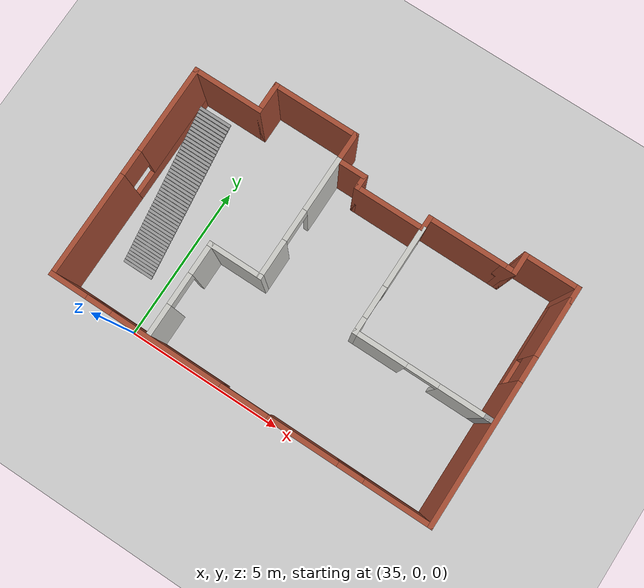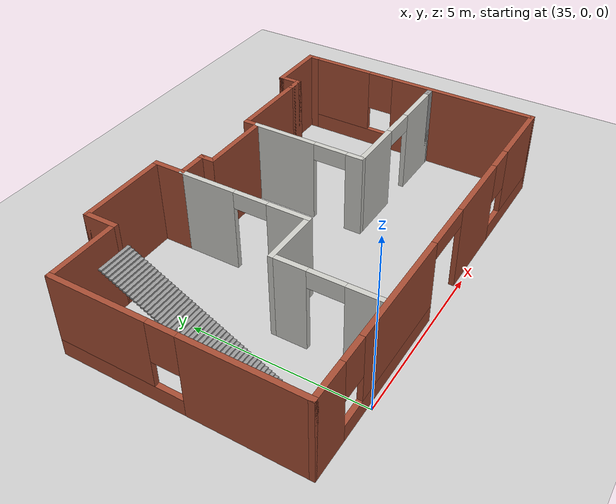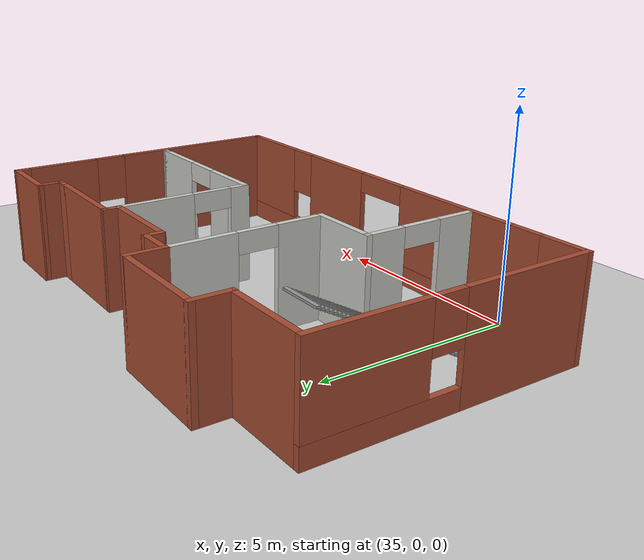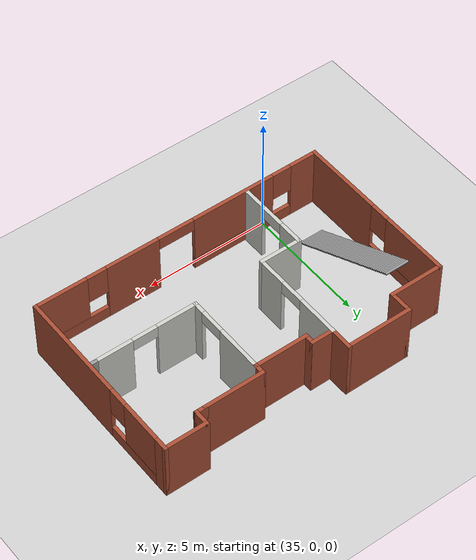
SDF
<sdf version="1.6">
 <world name="default">
  <model name="ground_plane">
   <static>1</static>
   <link name="link">
    <collision name="collision">
     <geometry><plane><normal>0 0 1</normal><size>100 100</size></plane></geometry>
     <surface><friction><ode><mu>100</mu><mu2>50</mu2></ode></friction></surface>
    </collision>
    <visual name="visual">
     <cast_shadows>0</cast_shadows>
     <geometry><plane><normal>0 0 1</normal><size>100 100</size></plane></geometry>
     <material>
      <script><uri>file://media/materials/scripts/gazebo.material</uri><name>Gazebo/Grey</name></script>
     </material>
    </visual>
   </link>
  </model>
  <model name="Multi_12_7home3">
   <pose>38.8003 4.03338 0 0 -0 0</pose>
   <link name="Stairs_5">
    <visual name="Stairs_5_Visual_0">
     <pose>-4.79994 -2.39706 0.025 0 0 -3.14159</pose>
     <geometry><box><size>1 0.093 0.05</size></box></geometry>
     <material>
      <script><uri>file://media/materials/scripts/gazebo.material</uri><name>Gazebo/Grey</name></script>
      <ambient>1 1 1 1</ambient>
     </material>
     <meta><layer>0</layer></meta>
    </visual>
    <collision name="Stairs_5_Collision_0">
     <geometry><box><size>1 0.093 0.05</size></box></geometry>
     <pose>-4.79994 -2.39706 0.025 0 0 -3.14159</pose>
    </collision>
    <visual name="Stairs_5_Visual_1">
     <pose>-4.79994 -2.30406 0.075 0 0 -3.14159</pose>
     <geometry><box><size>1 0.093 0.05</size></box></geometry>
     <material>
      <script><uri>file://media/materials/scripts/gazebo.material</uri><name>Gazebo/Grey</name></script>
      <ambient>1 1 1 1</ambient>
     </material>
     <meta><layer>0</layer></meta>
    </visual>
    <collision name="Stairs_5_Collision_1">
     <geometry><box><size>1 0.093 0.05</size></box></geometry>
     <pose>-4.79994 -2.30406 0.075 0 0 -3.14159</pose>
    </collision>
    <visual name="Stairs_5_Visual_2">
     <pose>-4.79994 -2.21106 0.125 0 0 -3.14159</pose>
     <geometry><box><size>1 0.093 0.05</size></box></geometry>
     <material>
      <script><uri>file://media/materials/scripts/gazebo.material</uri><name>Gazebo/Grey</name></script>
      <ambient>1 1 1 1</ambient>
     </material>
     <meta><layer>0</layer></meta>
    </visual>
    <collision name="Stairs_5_Collision_2">
     <geometry><box><size>1 0.093 0.05</size></box></geometry>
     <pose>-4.79994 -2.21106 0.125 0 0 -3.14159</pose>
    </collision>
    <visual name="Stairs_5_Visual_3">
     <pose>-4.79994 -2.11806 0.175 0 0 -3.14159</pose>
     <geometry><box><size>1 0.093 0.05</size></box></geometry>
     <material>
      <script><uri>file://media/materials/scripts/gazebo.material</uri><name>Gazebo/Grey</name></script>
      <ambient>1 1 1 1</ambient>
     </material>
     <meta><layer>0</layer></meta>
    </visual>
    <collision name="Stairs_5_Collision_3">
     <geometry><box><size>1 0.093 0.05</size></box></geometry>
     <pose>-4.79994 -2.11806 0.175 0 0 -3.14159</pose>
    </collision>
    <visual name="Stairs_5_Visual_4">
     <pose>-4.79994 -2.02506 0.225 0 0 -3.14159</pose>
     <geometry><box><size>1 0.093 0.05</size></box></geometry>
     <material>
      <script><uri>file://media/materials/scripts/gazebo.material</uri><name>Gazebo/Grey</name></script>
      <ambient>1 1 1 1</ambient>
     </material>
     <meta><layer>0</layer></meta>
    </visual>
    <collision name="Stairs_5_Collision_4">
     <geometry><box><size>1 0.093 0.05</size></box></geometry>
     <pose>-4.79994 -2.02506 0.225 0 0 -3.14159</pose>
    </collision>
    <visual name="Stairs_5_Visual_5">
     <pose>-4.79994 -1.93206 0.275 0 0 -3.14159</pose>
     <geometry><box><size>1 0.093 0.05</size></box></geometry>
     <material>
      <script><uri>file://media/materials/scripts/gazebo.material</uri><name>Gazebo/Grey</name></script>
      <ambient>1 1 1 1</ambient>
     </material>
     <meta><layer>0</layer></meta>
    </visual>
    <collision name="Stairs_5_Collision_5">
     <geometry><box><size>1 0.093 0.05</size></box></geometry>
     <pose>-4.79994 -1.93206 0.275 0 0 -3.14159</pose>
    </collision>
    <visual name="Stairs_5_Visual_6">
     <pose>-4.79994 -1.83906 0.325 0 0 -3.14159</pose>
     <geometry><box><size>1 0.093 0.05</size></box></geometry>
     <material>
      <script><uri>file://media/materials/scripts/gazebo.material</uri><name>Gazebo/Grey</name></script>
      <ambient>1 1 1 1</ambient>
     </material>
     <meta><layer>0</layer></meta>
    </visual>
    <collision name="Stairs_5_Collision_6">
     <geometry><box><size>1 0.093 0.05</size></box></geometry>
     <pose>-4.79994 -1.83906 0.325 0 0 -3.14159</pose>
    </collision>
    <visual name="Stairs_5_Visual_7">
     <pose>-4.79994 -1.74606 0.375 0 0 -3.14159</pose>
     <geometry><box><size>1 0.093 0.05</size></box></geometry>
     <material>
      <script><uri>file://media/materials/scripts/gazebo.material</uri><name>Gazebo/Grey</name></script>
      <ambient>1 1 1 1</ambient>
     </material>
     <meta><layer>0</layer></meta>
    </visual>
    <collision name="Stairs_5_Collision_7">
     <geometry><box><size>1 0.093 0.05</size></box></geometry>
     <pose>-4.79994 -1.74606 0.375 0 0 -3.14159</pose>
    </collision>
    <visual name="Stairs_5_Visual_8">
     <pose>-4.79994 -1.65306 0.425 0 0 -3.14159</pose>
     <geometry><box><size>1 0.093 0.05</size></box></geometry>
     <material>
      <script><uri>file://media/materials/scripts/gazebo.material</uri><name>Gazebo/Grey</name></script>
      <ambient>1 1 1 1</ambient>
     </material>
     <meta><layer>0</layer></meta>
    </visual>
    <collision name="Stairs_5_Collision_8">
     <geometry><box><size>1 0.093 0.05</size></box></geometry>
     <pose>-4.79994 -1.65306 0.425 0 0 -3.14159</pose>
    </collision>
    <visual name="Stairs_5_Visual_9">
     <pose>-4.79994 -1.56006 0.475 0 0 -3.14159</pose>
     <geometry><box><size>1 0.093 0.05</size></box></geometry>
     <material>
      <script><uri>file://media/materials/scripts/gazebo.material</uri><name>Gazebo/Grey</name></script>
      <ambient>1 1 1 1</ambient>
     </material>
     <meta><layer>0</layer></meta>
    </visual>
    <collision name="Stairs_5_Collision_9">
     <geometry><box><size>1 0.093 0.05</size></box></geometry>
     <pose>-4.79994 -1.56006 0.475 0 0 -3.14159</pose>
    </collision>
    <visual name="Stairs_5_Visual_10">
     <pose>-4.79994 -1.46706 0.525 0 0 -3.14159</pose>
     <geometry><box><size>1 0.093 0.05</size></box></geometry>
     <material>
      <script><uri>file://media/materials/scripts/gazebo.material</uri><name>Gazebo/Grey</name></script>
      <ambient>1 1 1 1</ambient>
     </material>
     <meta><layer>0</layer></meta>
    </visual>
    <collision name="Stairs_5_Collision_10">
     <geometry><box><size>1 0.093 0.05</size></box></geometry>
     <pose>-4.79994 -1.46706 0.525 0 0 -3.14159</pose>
    </collision>
    <visual name="Stairs_5_Visual_11">
     <pose>-4.79994 -1.37406 0.575 0 0 -3.14159</pose>
     <geometry><box><size>1 0.093 0.05</size></box></geometry>
     <material>
      <script><uri>file://media/materials/scripts/gazebo.material</uri><name>Gazebo/Grey</name></script>
      <ambient>1 1 1 1</ambient>
     </material>
     <meta><layer>0</layer></meta>
    </visual>
    <collision name="Stairs_5_Collision_11">
     <geometry><box><size>1 0.093 0.05</size></box></geometry>
     <pose>-4.79994 -1.37406 0.575 0 0 -3.14159</pose>
    </collision>
    <visual name="Stairs_5_Visual_12">
     <pose>-4.79994 -1.28106 0.625 0 0 -3.14159</pose>
     <geometry><box><size>1 0.093 0.05</size></box></geometry>
     <material>
      <script><uri>file://media/materials/scripts/gazebo.material</uri><name>Gazebo/Grey</name></script>
      <ambient>1 1 1 1</ambient>
     </material>
     <meta><layer>0</layer></meta>
    </visual>
    <collision name="Stairs_5_Collision_12">
     <geometry><box><size>1 0.093 0.05</size></box></geometry>
     <pose>-4.79994 -1.28106 0.625 0 0 -3.14159</pose>
    </collision>
    <visual name="Stairs_5_Visual_13">
     <pose>-4.79994 -1.18806 0.675 0 0 -3.14159</pose>
     <geometry><box><size>1 0.093 0.05</size></box></geometry>
     <material>
      <script><uri>file://media/materials/scripts/gazebo.material</uri><name>Gazebo/Grey</name></script>
      <ambient>1 1 1 1</ambient>
     </material>
     <meta><layer>0</layer></meta>
    </visual>
    <collision name="Stairs_5_Collision_13">
     <geometry><box><size>1 0.093 0.05</size></box></geometry>
     <pose>-4.79994 -1.18806 0.675 0 0 -3.14159</pose>
    </collision>
    <visual name="Stairs_5_Visual_14">
     <pose>-4.79994 -1.09506 0.725 0 0 -3.14159</pose>
     <geometry><box><size>1 0.093 0.05</size></box></geometry>
     <material>
      <script><uri>file://media/materials/scripts/gazebo.material</uri><name>Gazebo/Grey</name></script>
      <ambient>1 1 1 1</ambient>
     </material>
     <meta><layer>0</layer></meta>
    </visual>
    <collision name="Stairs_5_Collision_14">
     <geometry><box><size>1 0.093 0.05</size></box></geometry>
     <pose>-4.79994 -1.09506 0.725 0 0 -3.14159</pose>
    </collision>
    <visual name="Stairs_5_Visual_15">
     <pose>-4.79994 -1.00206 0.775 0 0 -3.14159</pose>
     <geometry><box><size>1 0.093 0.05</size></box></geometry>
     <material>
      <script><uri>file://media/materials/scripts/gazebo.material</uri><name>Gazebo/Grey</name></script>
      <ambient>1 1 1 1</ambient>
     </material>
     <meta><layer>0</layer></meta>
    </visual>
    <collision name="Stairs_5_Collision_15">
     <geometry><box><size>1 0.093 0.05</size></box></geometry>
     <pose>-4.79994 -1.00206 0.775 0 0 -3.14159</pose>
    </collision>
    <visual name="Stairs_5_Visual_16">
     <pose>-4.79994 -0.909056 0.825 0 0 -3.14159</pose>
     <geometry><box><size>1 0.093 0.05</size></box></geometry>
     <material>
      <script><uri>file://media/materials/scripts/gazebo.material</uri><name>Gazebo/Grey</name></script>
      <ambient>1 1 1 1</ambient>
     </material>
     <meta><layer>0</layer></meta>
    </visual>
    <collision name="Stairs_5_Collision_16">
     <geometry><box><size>1 0.093 0.05</size></box></geometry>
     <pose>-4.79994 -0.909056 0.825 0 0 -3.14159</pose>
    </collision>
    <visual name="Stairs_5_Visual_17">
     <pose>-4.79994 -0.816056 0.875 0 0 -3.14159</pose>
     <geometry><box><size>1 0.093 0.05</size></box></geometry>
     <material>
      <script><uri>file://media/materials/scripts/gazebo.material</uri><name>Gazebo/Grey</name></script>
      <ambient>1 1 1 1</ambient>
     </material>
     <meta><layer>0</layer></meta>
    </visual>
    <collision name="Stairs_5_Collision_17">
     <geometry><box><size>1 0.093 0.05</size></box></geometry>
     <pose>-4.79994 -0.816056 0.875 0 0 -3.14159</pose>
    </collision>
    <visual name="Stairs_5_Visual_18">
     <pose>-4.79994 -0.723056 0.925 0 0 -3.14159</pose>
     <geometry><box><size>1 0.093 0.05</size></box></geometry>
     <material>
      <script><uri>file://media/materials/scripts/gazebo.material</uri><name>Gazebo/Grey</name></script>
      <ambient>1 1 1 1</ambient>
     </material>
     <meta><layer>0</layer></meta>
    </visual>
    <collision name="Stairs_5_Collision_18">
     <geometry><box><size>1 0.093 0.05</size></box></geometry>
     <pose>-4.79994 -0.723056 0.925 0 0 -3.14159</pose>
    </collision>
    <visual name="Stairs_5_Visual_19">
     <pose>-4.79994 -0.630056 0.975 0 0 -3.14159</pose>
     <geometry><box><size>1 0.093 0.05</size></box></geometry>
     <material>
      <script><uri>file://media/materials/scripts/gazebo.material</uri><name>Gazebo/Grey</name></script>
      <ambient>1 1 1 1</ambient>
     </material>
     <meta><layer>0</layer></meta>
    </visual>
    <collision name="Stairs_5_Collision_19">
     <geometry><box><size>1 0.093 0.05</size></box></geometry>
     <pose>-4.79994 -0.630056 0.975 0 0 -3.14159</pose>
    </collision>
    <visual name="Stairs_5_Visual_20">
     <pose>-4.79994 -0.537056 1.025 0 0 -3.14159</pose>
     <geometry><box><size>1 0.093 0.05</size></box></geometry>
     <material>
      <script><uri>file://media/materials/scripts/gazebo.material</uri><name>Gazebo/Grey</name></script>
      <ambient>1 1 1 1</ambient>
     </material>
     <meta><layer>0</layer></meta>
    </visual>
    <collision name="Stairs_5_Collision_20">
     <geometry><box><size>1 0.093 0.05</size></box></geometry>
     <pose>-4.79994 -0.537056 1.025 0 0 -3.14159</pose>
    </collision>
    <visual name="Stairs_5_Visual_21">
     <pose>-4.79994 -0.444056 1.075 0 0 -3.14159</pose>
     <geometry><box><size>1 0.093 0.05</size></box></geometry>
     <material>
      <script><uri>file://media/materials/scripts/gazebo.material</uri><name>Gazebo/Grey</name></script>
      <ambient>1 1 1 1</ambient>
     </material>
     <meta><layer>0</layer></meta>
    </visual>
    <collision name="Stairs_5_Collision_21">
     <geometry><box><size>1 0.093 0.05</size></box></geometry>
     <pose>-4.79994 -0.444056 1.075 0 0 -3.14159</pose>
    </collision>
    <visual name="Stairs_5_Visual_22">
     <pose>-4.79994 -0.351056 1.125 0 0 -3.14159</pose>
     <geometry><box><size>1 0.093 0.05</size></box></geometry>
     <material>
      <script><uri>file://media/materials/scripts/gazebo.material</uri><name>Gazebo/Grey</name></script>
      <ambient>1 1 1 1</ambient>
     </material>
     <meta><layer>0</layer></meta>
    </visual>
    <collision name="Stairs_5_Collision_22">
     <geometry><box><size>1 0.093 0.05</size></box></geometry>
     <pose>-4.79994 -0.351056 1.125 0 0 -3.14159</pose>
    </collision>
    <visual name="Stairs_5_Visual_23">
     <pose>-4.79994 -0.258056 1.175 0 0 -3.14159</pose>
     <geometry><box><size>1 0.093 0.05</size></box></geometry>
     <material>
      <script><uri>file://media/materials/scripts/gazebo.material</uri><name>Gazebo/Grey</name></script>
      <ambient>1 1 1 1</ambient>
     </material>
     <meta><layer>0</layer></meta>
    </visual>
    <collision name="Stairs_5_Collision_23">
     <geometry><box><size>1 0.093 0.05</size></box></geometry>
     <pose>-4.79994 -0.258056 1.175 0 0 -3.14159</pose>
    </collision>
    <visual name="Stairs_5_Visual_24">
     <pose>-4.79994 -0.165056 1.225 0 0 -3.14159</pose>
     <geometry><box><size>1 0.093 0.05</size></box></geometry>
     <material>
      <script><uri>file://media/materials/scripts/gazebo.material</uri><name>Gazebo/Grey</name></script>
      <ambient>1 1 1 1</ambient>
     </material>
     <meta><layer>0</layer></meta>
    </visual>
    <collision name="Stairs_5_Collision_24">
     <geometry><box><size>1 0.093 0.05</size></box></geometry>
     <pose>-4.79994 -0.165056 1.225 0 0 -3.14159</pose>
    </collision>
    <visual name="Stairs_5_Visual_25">
     <pose>-4.79994 -0.072056 1.275 0 0 -3.14159</pose>
     <geometry><box><size>1 0.093 0.05</size></box></geometry>
     <material>
      <script><uri>file://media/materials/scripts/gazebo.material</uri><name>Gazebo/Grey</name></script>
      <ambient>1 1 1 1</ambient>
     </material>
     <meta><layer>0</layer></meta>
    </visual>
    <collision name="Stairs_5_Collision_25">
     <geometry><box><size>1 0.093 0.05</size></box></geometry>
     <pose>-4.79994 -0.072056 1.275 0 0 -3.14159</pose>
    </collision>
    <visual name="Stairs_5_Visual_26">
     <pose>-4.79994 0.020944 1.325 0 0 -3.14159</pose>
     <geometry><box><size>1 0.093 0.05</size></box></geometry>
     <material>
      <script><uri>file://media/materials/scripts/gazebo.material</uri><name>Gazebo/Grey</name></script>
      <ambient>1 1 1 1</ambient>
     </material>
     <meta><layer>0</layer></meta>
    </visual>
    <collision name="Stairs_5_Collision_26">
     <geometry><box><size>1 0.093 0.05</size></box></geometry>
     <pose>-4.79994 0.020944 1.325 0 0 -3.14159</pose>
    </collision>
    <visual name="Stairs_5_Visual_27">
     <pose>-4.79994 0.113944 1.375 0 0 -3.14159</pose>
     <geometry><box><size>1 0.093 0.05</size></box></geometry>
     <material>
      <script><uri>file://media/materials/scripts/gazebo.material</uri><name>Gazebo/Grey</name></script>
      <ambient>1 1 1 1</ambient>
     </material>
     <meta><layer>0</layer></meta>
    </visual>
    <collision name="Stairs_5_Collision_27">
     <geometry><box><size>1 0.093 0.05</size></box></geometry>
     <pose>-4.79994 0.113944 1.375 0 0 -3.14159</pose>
    </collision>
    <visual name="Stairs_5_Visual_28">
     <pose>-4.79994 0.206944 1.425 0 0 -3.14159</pose>
     <geometry><box><size>1 0.093 0.05</size></box></geometry>
     <material>
      <script><uri>file://media/materials/scripts/gazebo.material</uri><name>Gazebo/Grey</name></script>
      <ambient>1 1 1 1</ambient>
     </material>
     <meta><layer>0</layer></meta>
    </visual>
    <collision name="Stairs_5_Collision_28">
     <geometry><box><size>1 0.093 0.05</size></box></geometry>
     <pose>-4.79994 0.206944 1.425 0 0 -3.14159</pose>
    </collision>
    <visual name="Stairs_5_Visual_29">
     <pose>-4.79994 0.299944 1.475 0 0 -3.14159</pose>
     <geometry><box><size>1 0.093 0.05</size></box></geometry>
     <material>
      <script><uri>file://media/materials/scripts/gazebo.material</uri><name>Gazebo/Grey</name></script>
      <ambient>1 1 1 1</ambient>
     </material>
     <meta><layer>0</layer></meta>
    </visual>
    <collision name="Stairs_5_Collision_29">
     <geometry><box><size>1 0.093 0.05</size></box></geometry>
     <pose>-4.79994 0.299944 1.475 0 0 -3.14159</pose>
    </collision>
    <visual name="Stairs_5_Visual_30">
     <pose>-4.79994 0.392944 1.525 0 0 -3.14159</pose>
     <geometry><box><size>1 0.093 0.05</size></box></geometry>
     <material>
      <script><uri>file://media/materials/scripts/gazebo.material</uri><name>Gazebo/Grey</name></script>
      <ambient>1 1 1 1</ambient>
     </material>
     <meta><layer>0</layer></meta>
    </visual>
    <collision name="Stairs_5_Collision_30">
     <geometry><box><size>1 0.093 0.05</size></box></geometry>
     <pose>-4.79994 0.392944 1.525 0 0 -3.14159</pose>
    </collision>
    <visual name="Stairs_5_Visual_31">
     <pose>-4.79994 0.485944 1.575 0 0 -3.14159</pose>
     <geometry><box><size>1 0.093 0.05</size></box></geometry>
     <material>
      <script><uri>file://media/materials/scripts/gazebo.material</uri><name>Gazebo/Grey</name></script>
      <ambient>1 1 1 1</ambient>
     </material>
     <meta><layer>0</layer></meta>
    </visual>
    <collision name="Stairs_5_Collision_31">
     <geometry><box><size>1 0.093 0.05</size></box></geometry>
     <pose>-4.79994 0.485944 1.575 0 0 -3.14159</pose>
    </collision>
    <visual name="Stairs_5_Visual_32">
     <pose>-4.79994 0.578944 1.625 0 0 -3.14159</pose>
     <geometry><box><size>1 0.093 0.05</size></box></geometry>
     <material>
      <script><uri>file://media/materials/scripts/gazebo.material</uri><name>Gazebo/Grey</name></script>
      <ambient>1 1 1 1</ambient>
     </material>
     <meta><layer>0</layer></meta>
    </visual>
    <collision name="Stairs_5_Collision_32">
     <geometry><box><size>1 0.093 0.05</size></box></geometry>
     <pose>-4.79994 0.578944 1.625 0 0 -3.14159</pose>
    </collision>
    <visual name="Stairs_5_Visual_33">
     <pose>-4.79994 0.671944 1.675 0 0 -3.14159</pose>
     <geometry><box><size>1 0.093 0.05</size></box></geometry>
     <material>
      <script><uri>file://media/materials/scripts/gazebo.material</uri><name>Gazebo/Grey</name></script>
      <ambient>1 1 1 1</ambient>
     </material>
     <meta><layer>0</layer></meta>
    </visual>
    <collision name="Stairs_5_Collision_33">
     <geometry><box><size>1 0.093 0.05</size></box></geometry>
     <pose>-4.79994 0.671944 1.675 0 0 -3.14159</pose>
    </collision>
    <visual name="Stairs_5_Visual_34">
     <pose>-4.79994 0.764944 1.725 0 0 -3.14159</pose>
     <geometry><box><size>1 0.093 0.05</size></box></geometry>
     <material>
      <script><uri>file://media/materials/scripts/gazebo.material</uri><name>Gazebo/Grey</name></script>
      <ambient>1 1 1 1</ambient>
     </material>
     <meta><layer>0</layer></meta>
    </visual>
    <collision name="Stairs_5_Collision_34">
     <geometry><box><size>1 0.093 0.05</size></box></geometry>
     <pose>-4.79994 0.764944 1.725 0 0 -3.14159</pose>
    </collision>
    <visual name="Stairs_5_Visual_35">
     <pose>-4.79994 0.857944 1.775 0 0 -3.14159</pose>
     <geometry><box><size>1 0.093 0.05</size></box></geometry>
     <material>
      <script><uri>file://media/materials/scripts/gazebo.material</uri><name>Gazebo/Grey</name></script>
      <ambient>1 1 1 1</ambient>
     </material>
     <meta><layer>0</layer></meta>
    </visual>
    <collision name="Stairs_5_Collision_35">
     <geometry><box><size>1 0.093 0.05</size></box></geometry>
     <pose>-4.79994 0.857944 1.775 0 0 -3.14159</pose>
    </collision>
    <visual name="Stairs_5_Visual_36">
     <pose>-4.79994 0.950944 1.825 0 0 -3.14159</pose>
     <geometry><box><size>1 0.093 0.05</size></box></geometry>
     <material>
      <script><uri>file://media/materials/scripts/gazebo.material</uri><name>Gazebo/Grey</name></script>
      <ambient>1 1 1 1</ambient>
     </material>
     <meta><layer>0</layer></meta>
    </visual>
    <collision name="Stairs_5_Collision_36">
     <geometry><box><size>1 0.093 0.05</size></box></geometry>
     <pose>-4.79994 0.950944 1.825 0 0 -3.14159</pose>
    </collision>
    <visual name="Stairs_5_Visual_37">
     <pose>-4.79994 1.04394 1.875 0 0 -3.14159</pose>
     <geometry><box><size>1 0.093 0.05</size></box></geometry>
     <material>
      <script><uri>file://media/materials/scripts/gazebo.material</uri><name>Gazebo/Grey</name></script>
      <ambient>1 1 1 1</ambient>
     </material>
     <meta><layer>0</layer></meta>
    </visual>
    <collision name="Stairs_5_Collision_37">
     <geometry><box><size>1 0.093 0.05</size></box></geometry>
     <pose>-4.79994 1.04394 1.875 0 0 -3.14159</pose>
    </collision>
    <visual name="Stairs_5_Visual_38">
     <pose>-4.79994 1.13694 1.925 0 0 -3.14159</pose>
     <geometry><box><size>1 0.093 0.05</size></box></geometry>
     <material>
      <script><uri>file://media/materials/scripts/gazebo.material</uri><name>Gazebo/Grey</name></script>
      <ambient>1 1 1 1</ambient>
     </material>
     <meta><layer>0</layer></meta>
    </visual>
    <collision name="Stairs_5_Collision_38">
     <geometry><box><size>1 0.093 0.05</size></box></geometry>
     <pose>-4.79994 1.13694 1.925 0 0 -3.14159</pose>
    </collision>
    <visual name="Stairs_5_Visual_39">
     <pose>-4.79994 1.22994 1.975 0 0 -3.14159</pose>
     <geometry><box><size>1 0.093 0.05</size></box></geometry>
     <material>
      <script><uri>file://media/materials/scripts/gazebo.material</uri><name>Gazebo/Grey</name></script>
      <ambient>1 1 1 1</ambient>
     </material>
     <meta><layer>0</layer></meta>
    </visual>
    <collision name="Stairs_5_Collision_39">
     <geometry><box><size>1 0.093 0.05</size></box></geometry>
     <pose>-4.79994 1.22994 1.975 0 0 -3.14159</pose>
    </collision>
    <visual name="Stairs_5_Visual_40">
     <pose>-4.79994 1.32294 2.025 0 0 -3.14159</pose>
     <geometry><box><size>1 0.093 0.05</size></box></geometry>
     <material>
      <script><uri>file://media/materials/scripts/gazebo.material</uri><name>Gazebo/Grey</name></script>
      <ambient>1 1 1 1</ambient>
     </material>
     <meta><layer>0</layer></meta>
    </visual>
    <collision name="Stairs_5_Collision_40">
     <geometry><box><size>1 0.093 0.05</size></box></geometry>
     <pose>-4.79994 1.32294 2.025 0 0 -3.14159</pose>
    </collision>
    <visual name="Stairs_5_Visual_41">
     <pose>-4.79994 1.41594 2.075 0 0 -3.14159</pose>
     <geometry><box><size>1 0.093 0.05</size></box></geometry>
     <material>
      <script><uri>file://media/materials/scripts/gazebo.material</uri><name>Gazebo/Grey</name></script>
      <ambient>1 1 1 1</ambient>
     </material>
     <meta><layer>0</layer></meta>
    </visual>
    <collision name="Stairs_5_Collision_41">
     <geometry><box><size>1 0.093 0.05</size></box></geometry>
     <pose>-4.79994 1.41594 2.075 0 0 -3.14159</pose>
    </collision>
    <visual name="Stairs_5_Visual_42">
     <pose>-4.79994 1.50894 2.125 0 0 -3.14159</pose>
     <geometry><box><size>1 0.093 0.05</size></box></geometry>
     <material>
      <script><uri>file://media/materials/scripts/gazebo.material</uri><name>Gazebo/Grey</name></script>
      <ambient>1 1 1 1</ambient>
     </material>
     <meta><layer>0</layer></meta>
    </visual>
    <collision name="Stairs_5_Collision_42">
     <geometry><box><size>1 0.093 0.05</size></box></geometry>
     <pose>-4.79994 1.50894 2.125 0 0 -3.14159</pose>
    </collision>
    <visual name="Stairs_5_Visual_43">
     <pose>-4.79994 1.60194 2.175 0 0 -3.14159</pose>
     <geometry><box><size>1 0.093 0.05</size></box></geometry>
     <material>
      <script><uri>file://media/materials/scripts/gazebo.material</uri><name>Gazebo/Grey</name></script>
      <ambient>1 1 1 1</ambient>
     </material>
     <meta><layer>0</layer></meta>
    </visual>
    <collision name="Stairs_5_Collision_43">
     <geometry><box><size>1 0.093 0.05</size></box></geometry>
     <pose>-4.79994 1.60194 2.175 0 0 -3.14159</pose>
    </collision>
    <visual name="Stairs_5_Visual_44">
     <pose>-4.79994 1.69494 2.225 0 0 -3.14159</pose>
     <geometry><box><size>1 0.093 0.05</size></box></geometry>
     <material>
      <script><uri>file://media/materials/scripts/gazebo.material</uri><name>Gazebo/Grey</name></script>
      <ambient>1 1 1 1</ambient>
     </material>
     <meta><layer>0</layer></meta>
    </visual>
    <collision name="Stairs_5_Collision_44">
     <geometry><box><size>1 0.093 0.05</size></box></geometry>
     <pose>-4.79994 1.69494 2.225 0 0 -3.14159</pose>
    </collision>
    <visual name="Stairs_5_Visual_45">
     <pose>-4.79994 1.78794 2.275 0 0 -3.14159</pose>
     <geometry><box><size>1 0.093 0.05</size></box></geometry>
     <material>
      <script><uri>file://media/materials/scripts/gazebo.material</uri><name>Gazebo/Grey</name></script>
      <ambient>1 1 1 1</ambient>
     </material>
     <meta><layer>0</layer></meta>
    </visual>
    <collision name="Stairs_5_Collision_45">
     <geometry><box><size>1 0.093 0.05</size></box></geometry>
     <pose>-4.79994 1.78794 2.275 0 0 -3.14159</pose>
    </collision>
    <visual name="Stairs_5_Visual_46">
     <pose>-4.79994 1.88094 2.325 0 0 -3.14159</pose>
     <geometry><box><size>1 0.093 0.05</size></box></geometry>
     <material>
      <script><uri>file://media/materials/scripts/gazebo.material</uri><name>Gazebo/Grey</name></script>
      <ambient>1 1 1 1</ambient>
     </material>
     <meta><layer>0</layer></meta>
    </visual>
    <collision name="Stairs_5_Collision_46">
     <geometry><box><size>1 0.093 0.05</size></box></geometry>
     <pose>-4.79994 1.88094 2.325 0 0 -3.14159</pose>
    </collision>
    <visual name="Stairs_5_Visual_47">
     <pose>-4.79994 1.97394 2.375 0 0 -3.14159</pose>
     <geometry><box><size>1 0.093 0.05</size></box></geometry>
     <material>
      <script><uri>file://media/materials/scripts/gazebo.material</uri><name>Gazebo/Grey</name></script>
      <ambient>1 1 1 1</ambient>
     </material>
     <meta><layer>0</layer></meta>
    </visual>
    <collision name="Stairs_5_Collision_47">
     <geometry><box><size>1 0.093 0.05</size></box></geometry>
     <pose>-4.79994 1.97394 2.375 0 0 -3.14159</pose>
    </collision>
    <visual name="Stairs_5_Visual_48">
     <pose>-4.79994 2.06694 2.425 0 0 -3.14159</pose>
     <geometry><box><size>1 0.093 0.05</size></box></geometry>
     <material>
      <script><uri>file://media/materials/scripts/gazebo.material</uri><name>Gazebo/Grey</name></script>
      <ambient>1 1 1 1</ambient>
     </material>
     <meta><layer>0</layer></meta>
    </visual>
    <collision name="Stairs_5_Collision_48">
     <geometry><box><size>1 0.093 0.05</size></box></geometry>
     <pose>-4.79994 2.06694 2.425 0 0 -3.14159</pose>
    </collision>
    <visual name="Stairs_5_Visual_49">
     <pose>-4.79994 2.15994 2.475 0 0 -3.14159</pose>
     <geometry><box><size>1 0.093 0.05</size></box></geometry>
     <material>
      <script><uri>file://media/materials/scripts/gazebo.material</uri><name>Gazebo/Grey</name></script>
      <ambient>1 1 1 1</ambient>
     </material>
     <meta><layer>0</layer></meta>
    </visual>
    <collision name="Stairs_5_Collision_49">
     <geometry><box><size>1 0.093 0.05</size></box></geometry>
     <pose>-4.79994 2.15994 2.475 0 0 -3.14159</pose>
    </collision>
   </link>
   <link name="Wall_20">
    <pose>0 -3.85 0 0 -0 0</pose>
    <visual name="Wall_20_Visual_0">
     <pose>-5.47297 0 1.25 0 -0 0</pose>
     <geometry><box><size>1.20406 0.15 2.5</size></box></geometry>
     <material>
      <script><uri>file://media/materials/scripts/gazebo.material</uri><name>Gazebo/Bricks</name></script>
      <ambient>0.996078 0.47451 0.0196078 1</ambient>
     </material>
     <meta><layer>0</layer></meta>
    </visual>
    <collision name="Wall_20_Collision_0">
     <geometry><box><size>1.20406 0.15 2.5</size></box></geometry>
     <pose>-5.47297 0 1.25 0 -0 0</pose>
    </collision>
    <visual name="Wall_20_Visual_1">
     <pose>2.02955 0 1.25 0 -0 0</pose>
     <geometry><box><size>2.20541 0.15 2.5</size></box></geometry>
     <material>
      <script><uri>file://media/materials/scripts/gazebo.material</uri><name>Gazebo/Bricks</name></script>
      <ambient>0.996078 0.47451 0.0196078 1</ambient>
     </material>
     <meta><layer>0</layer></meta>
    </visual>
    <collision name="Wall_20_Collision_1">
     <geometry><box><size>2.20541 0.15 2.5</size></box></geometry>
     <pose>2.02955 0 1.25 0 -0 0</pose>
    </collision>
    <visual name="Wall_20_Visual_2">
     <pose>-2.72205 0 0.25 0 -0 0</pose>
     <geometry><box><size>4.29778 0.15 0.5</size></box></geometry>
     <material>
      <script><uri>file://media/materials/scripts/gazebo.material</uri><name>Gazebo/Bricks</name></script>
      <ambient>0.996078 0.47451 0.0196078 1</ambient>
     </material>
     <meta><layer>0</layer></meta>
    </visual>
    <collision name="Wall_20_Collision_2">
     <geometry><box><size>4.29778 0.15 0.5</size></box></geometry>
     <pose>-2.72205 0 0.25 0 -0 0</pose>
    </collision>
    <visual name="Wall_20_Visual_3">
     <pose>4.60363 0 0.25 0 -0 0</pose>
     <geometry><box><size>2.94275 0.15 0.5</size></box></geometry>
     <material>
      <script><uri>file://media/materials/scripts/gazebo.material</uri><name>Gazebo/Bricks</name></script>
      <ambient>0.996078 0.47451 0.0196078 1</ambient>
     </material>
     <meta><layer>0</layer></meta>
    </visual>
    <collision name="Wall_20_Collision_3">
     <geometry><box><size>2.94275 0.15 0.5</size></box></geometry>
     <pose>4.60363 0 0.25 0 -0 0</pose>
    </collision>
    <visual name="Wall_20_Visual_4">
     <pose>-2.32205 0 1.5 0 -0 0</pose>
     <geometry><box><size>3.49778 0.15 2</size></box></geometry>
     <material>
      <script><uri>file://media/materials/scripts/gazebo.material</uri><name>Gazebo/Bricks</name></script>
      <ambient>0.996078 0.47451 0.0196078 1</ambient>
     </material>
     <meta><layer>0</layer></meta>
    </visual>
    <collision name="Wall_20_Collision_4">
     <geometry><box><size>3.49778 0.15 2</size></box></geometry>
     <pose>-2.32205 0 1.5 0 -0 0</pose>
    </collision>
    <visual name="Wall_20_Visual_5">
     <pose>-2.32205 0 1.5 0 -0 0</pose>
     <geometry><box><size>3.49778 0.15 2</size></box></geometry>
     <material>
      <script><uri>file://media/materials/scripts/gazebo.material</uri><name>Gazebo/Bricks</name></script>
      <ambient>0.996078 0.47451 0.0196078 1</ambient>
     </material>
     <meta><layer>0</layer></meta>
    </visual>
    <collision name="Wall_20_Collision_5">
     <geometry><box><size>3.49778 0.15 2</size></box></geometry>
     <pose>-2.32205 0 1.5 0 -0 0</pose>
    </collision>
    <visual name="Wall_20_Visual_6">
     <pose>5.00363 0 1.5 0 -0 0</pose>
     <geometry><box><size>2.14275 0.15 2</size></box></geometry>
     <material>
      <script><uri>file://media/materials/scripts/gazebo.material</uri><name>Gazebo/Bricks</name></script>
      <ambient>0.996078 0.47451 0.0196078 1</ambient>
     </material>
     <meta><layer>0</layer></meta>
    </visual>
    <collision name="Wall_20_Collision_6">
     <geometry><box><size>2.14275 0.15 2</size></box></geometry>
     <pose>5.00363 0 1.5 0 -0 0</pose>
    </collision>
    <visual name="Wall_20_Visual_7">
     <pose>-4.47094 0 1.9 0 -0 0</pose>
     <geometry><box><size>0.8 0.15 1.2</size></box></geometry>
     <material>
      <script><uri>file://media/materials/scripts/gazebo.material</uri><name>Gazebo/Bricks</name></script>
      <ambient>0.996078 0.47451 0.0196078 1</ambient>
     </material>
     <meta><layer>0</layer></meta>
    </visual>
    <collision name="Wall_20_Collision_7">
     <geometry><box><size>0.8 0.15 1.2</size></box></geometry>
     <pose>-4.47094 0 1.9 0 -0 0</pose>
    </collision>
    <visual name="Wall_20_Visual_8">
     <pose>3.53225 0 1.9 0 -0 0</pose>
     <geometry><box><size>0.8 0.15 1.2</size></box></geometry>
     <material>
      <script><uri>file://media/materials/scripts/gazebo.material</uri><name>Gazebo/Bricks</name></script>
      <ambient>0.996078 0.47451 0.0196078 1</ambient>
     </material>
     <meta><layer>0</layer></meta>
    </visual>
    <collision name="Wall_20_Collision_8">
     <geometry><box><size>0.8 0.15 1.2</size></box></geometry>
     <pose>3.53225 0 1.9 0 -0 0</pose>
    </collision>
    <visual name="Wall_20_Visual_9">
     <pose>0.17684 0 2.25 0 -0 0</pose>
     <geometry><box><size>1.5 0.15 0.5</size></box></geometry>
     <material>
      <script><uri>file://media/materials/scripts/gazebo.material</uri><name>Gazebo/Bricks</name></script>
      <ambient>0.996078 0.47451 0.0196078 1</ambient>
     </material>
     <meta><layer>0</layer></meta>
    </visual>
    <collision name="Wall_20_Collision_9">
     <geometry><box><size>1.5 0.15 0.5</size></box></geometry>
     <pose>0.17684 0 2.25 0 -0 0</pose>
    </collision>
    <visual name="Wall_20_Visual_10">
     <pose>0.17684 0 2.25 0 -0 0</pose>
     <geometry><box><size>1.5 0.15 0.5</size></box></geometry>
     <material>
      <script><uri>file://media/materials/scripts/gazebo.material</uri><name>Gazebo/Bricks</name></script>
      <ambient>0.996078 0.47451 0.0196078 1</ambient>
     </material>
     <meta><layer>0</layer></meta>
    </visual>
    <collision name="Wall_20_Collision_10">
     <geometry><box><size>1.5 0.15 0.5</size></box></geometry>
     <pose>0.17684 0 2.25 0 -0 0</pose>
    </collision>
   </link>
   <link name="Wall_22">
    <pose>6 -0.35 0 0 -0 1.5708</pose>
    <visual name="Wall_22_Visual_0">
     <pose>-1.32733 0 1.25 0 -0 0</pose>
     <geometry><box><size>4.49534 0.15 2.5</size></box></geometry>
     <material>
      <script><uri>file://media/materials/scripts/gazebo.material</uri><name>Gazebo/Bricks</name></script>
      <ambient>0.996078 0.47451 0.0196078 1</ambient>
     </material>
     <meta><layer>0</layer></meta>
    </visual>
    <collision name="Wall_22_Collision_0">
     <geometry><box><size>4.49534 0.15 2.5</size></box></geometry>
     <pose>-1.32733 0 1.25 0 -0 0</pose>
    </collision>
    <visual name="Wall_22_Visual_1">
     <pose>2.24767 0 0.25 0 -0 0</pose>
     <geometry><box><size>2.65466 0.15 0.5</size></box></geometry>
     <material>
      <script><uri>file://media/materials/scripts/gazebo.material</uri><name>Gazebo/Bricks</name></script>
      <ambient>0.996078 0.47451 0.0196078 1</ambient>
     </material>
     <meta><layer>0</layer></meta>
    </visual>
    <collision name="Wall_22_Collision_1">
     <geometry><box><size>2.65466 0.15 0.5</size></box></geometry>
     <pose>2.24767 0 0.25 0 -0 0</pose>
    </collision>
    <visual name="Wall_22_Visual_2">
     <pose>2.64767 0 1.5 0 -0 0</pose>
     <geometry><box><size>1.85466 0.15 2</size></box></geometry>
     <material>
      <script><uri>file://media/materials/scripts/gazebo.material</uri><name>Gazebo/Bricks</name></script>
      <ambient>0.996078 0.47451 0.0196078 1</ambient>
     </material>
     <meta><layer>0</layer></meta>
    </visual>
    <collision name="Wall_22_Collision_2">
     <geometry><box><size>1.85466 0.15 2</size></box></geometry>
     <pose>2.64767 0 1.5 0 -0 0</pose>
    </collision>
    <visual name="Wall_22_Visual_3">
     <pose>1.32034 0 1.9 0 -0 0</pose>
     <geometry><box><size>0.8 0.15 1.2</size></box></geometry>
     <material>
      <script><uri>file://media/materials/scripts/gazebo.material</uri><name>Gazebo/Bricks</name></script>
      <ambient>0.996078 0.47451 0.0196078 1</ambient>
     </material>
     <meta><layer>0</layer></meta>
    </visual>
    <collision name="Wall_22_Collision_3">
     <geometry><box><size>0.8 0.15 1.2</size></box></geometry>
     <pose>1.32034 0 1.9 0 -0 0</pose>
    </collision>
   </link>
   <link name="Wall_24">
    <pose>-6 -0.425 0 0 -0 1.5708</pose>
    <visual name="Wall_24_Visual_0">
     <pose>-1.81903 0 1.25 0 -0 0</pose>
     <geometry><box><size>3.36194 0.15 2.5</size></box></geometry>
     <material>
      <script><uri>file://media/materials/scripts/gazebo.material</uri><name>Gazebo/Bricks</name></script>
      <ambient>0.996078 0.47451 0.0196078 1</ambient>
     </material>
     <meta><layer>0</layer></meta>
    </visual>
    <collision name="Wall_24_Collision_0">
     <geometry><box><size>3.36194 0.15 2.5</size></box></geometry>
     <pose>-1.81903 0 1.25 0 -0 0</pose>
    </collision>
    <visual name="Wall_24_Visual_1">
     <pose>1.68097 0 0.25 0 -0 0</pose>
     <geometry><box><size>3.63806 0.15 0.5</size></box></geometry>
     <material>
      <script><uri>file://media/materials/scripts/gazebo.material</uri><name>Gazebo/Bricks</name></script>
      <ambient>0.996078 0.47451 0.0196078 1</ambient>
     </material>
     <meta><layer>0</layer></meta>
    </visual>
    <collision name="Wall_24_Collision_1">
     <geometry><box><size>3.63806 0.15 0.5</size></box></geometry>
     <pose>1.68097 0 0.25 0 -0 0</pose>
    </collision>
    <visual name="Wall_24_Visual_2">
     <pose>2.08097 0 1.5 0 -0 0</pose>
     <geometry><box><size>2.83806 0.15 2</size></box></geometry>
     <material>
      <script><uri>file://media/materials/scripts/gazebo.material</uri><name>Gazebo/Bricks</name></script>
      <ambient>0.996078 0.47451 0.0196078 1</ambient>
     </material>
     <meta><layer>0</layer></meta>
    </visual>
    <collision name="Wall_24_Collision_2">
     <geometry><box><size>2.83806 0.15 2</size></box></geometry>
     <pose>2.08097 0 1.5 0 -0 0</pose>
    </collision>
    <visual name="Wall_24_Visual_3">
     <pose>0.261937 0 1.9 0 -0 0</pose>
     <geometry><box><size>0.8 0.15 1.2</size></box></geometry>
     <material>
      <script><uri>file://media/materials/scripts/gazebo.material</uri><name>Gazebo/Bricks</name></script>
      <ambient>0.996078 0.47451 0.0196078 1</ambient>
     </material>
     <meta><layer>0</layer></meta>
    </visual>
    <collision name="Wall_24_Collision_3">
     <geometry><box><size>0.8 0.15 1.2</size></box></geometry>
     <pose>0.261937 0 1.9 0 -0 0</pose>
    </collision>
   </link>
   <link name="Wall_26">
    <collision name="Wall_26_Collision">
     <geometry><box><size>2.25 0.15 2.5</size></box></geometry>
     <pose>0 0 1.25 0 -0 0</pose>
    </collision>
    <visual name="Wall_26_Visual">
     <pose>0 0 1.25 0 -0 0</pose>
     <geometry><box><size>2.25 0.15 2.5</size></box></geometry>
     <material>
      <script><uri>file://media/materials/scripts/gazebo.material</uri><name>Gazebo/Bricks</name></script>
      <ambient>0.996078 0.47451 0.0196078 1</ambient>
     </material>
     <meta><layer>0</layer></meta>
    </visual>
    <pose>-4.95 3 0 0 -0 0</pose>
   </link>
   <link name="Wall_27">
    <collision name="Wall_27_Collision">
     <geometry><box><size>1 0.15 2.5</size></box></geometry>
     <pose>0 0 1.25 0 -0 0</pose>
    </collision>
    <visual name="Wall_27_Visual">
     <pose>0 0 1.25 0 -0 0</pose>
     <geometry><box><size>1 0.15 2.5</size></box></geometry>
     <material>
      <script><uri>file://media/materials/scripts/gazebo.material</uri><name>Gazebo/Bricks</name></script>
      <ambient>0.996078 0.47451 0.0196078 1</ambient>
     </material>
     <meta><layer>0</layer></meta>
    </visual>
    <pose>-3.9 3.425 0 0 -0 1.5708</pose>
   </link>
   <link name="Wall_28">
    <collision name="Wall_28_Collision">
     <geometry><box><size>2.75 0.15 2.5</size></box></geometry>
     <pose>0 0 1.25 0 -0 0</pose>
    </collision>
    <visual name="Wall_28_Visual">
     <pose>0 0 1.25 0 -0 0</pose>
     <geometry><box><size>2.75 0.15 2.5</size></box></geometry>
     <material>
      <script><uri>file://media/materials/scripts/gazebo.material</uri><name>Gazebo/Bricks</name></script>
      <ambient>0.996078 0.47451 0.0196078 1</ambient>
     </material>
     <meta><layer>0</layer></meta>
    </visual>
    <pose>-2.6 3.85 0 0 -0 0</pose>
   </link>
   <link name="Wall_29">
    <collision name="Wall_29_Collision">
     <geometry><box><size>1 0.15 2.5</size></box></geometry>
     <pose>0 0 1.25 0 -0 0</pose>
    </collision>
    <visual name="Wall_29_Visual">
     <pose>0 0 1.25 0 -0 0</pose>
     <geometry><box><size>1 0.15 2.5</size></box></geometry>
     <material>
      <script><uri>file://media/materials/scripts/gazebo.material</uri><name>Gazebo/Bricks</name></script>
      <ambient>0.996078 0.47451 0.0196078 1</ambient>
     </material>
     <meta><layer>0</layer></meta>
    </visual>
    <pose>-1.3 3.425 0 0 -0 -1.5708</pose>
   </link>
   <link name="Wall_30">
    <collision name="Wall_30_Collision">
     <geometry><box><size>1 0.15 2.5</size></box></geometry>
     <pose>0 0 1.25 0 -0 0</pose>
    </collision>
    <visual name="Wall_30_Visual">
     <pose>0 0 1.25 0 -0 0</pose>
     <geometry><box><size>1 0.15 2.5</size></box></geometry>
     <material>
      <script><uri>file://media/materials/scripts/gazebo.material</uri><name>Gazebo/Bricks</name></script>
      <ambient>0.996078 0.47451 0.0196078 1</ambient>
     </material>
     <meta><layer>0</layer></meta>
    </visual>
    <pose>-0.875 3 0 0 -0 0</pose>
   </link>
   <link name="Wall_31">
    <collision name="Wall_31_Collision">
     <geometry><box><size>0.5 0.15 2.5</size></box></geometry>
     <pose>0 0 1.25 0 -0 0</pose>
    </collision>
    <visual name="Wall_31_Visual">
     <pose>0 0 1.25 0 -0 0</pose>
     <geometry><box><size>0.5 0.15 2.5</size></box></geometry>
     <material>
      <script><uri>file://media/materials/scripts/gazebo.material</uri><name>Gazebo/Bricks</name></script>
      <ambient>0.996078 0.47451 0.0196078 1</ambient>
     </material>
     <meta><layer>0</layer></meta>
    </visual>
    <pose>-0.45 2.825 0 0 -0 -1.5708</pose>
   </link>
   <link name="Wall_32">
    <collision name="Wall_32_Collision">
     <geometry><box><size>2.25 0.15 2.5</size></box></geometry>
     <pose>0 0 1.25 0 -0 0</pose>
    </collision>
    <visual name="Wall_32_Visual">
     <pose>0 0 1.25 0 -0 0</pose>
     <geometry><box><size>2.25 0.15 2.5</size></box></geometry>
     <material>
      <script><uri>file://media/materials/scripts/gazebo.material</uri><name>Gazebo/Bricks</name></script>
      <ambient>0.996078 0.47451 0.0196078 1</ambient>
     </material>
     <meta><layer>0</layer></meta>
    </visual>
    <pose>0.6 2.65 0 0 -0 0</pose>
   </link>
   <link name="Wall_33">
    <collision name="Wall_33_Collision">
     <geometry><box><size>0.5 0.15 2.5</size></box></geometry>
     <pose>0 0 1.25 0 -0 0</pose>
    </collision>
    <visual name="Wall_33_Visual">
     <pose>0 0 1.25 0 -0 0</pose>
     <geometry><box><size>0.5 0.15 2.5</size></box></geometry>
     <material>
      <script><uri>file://media/materials/scripts/gazebo.material</uri><name>Gazebo/Bricks</name></script>
      <ambient>0.996078 0.47451 0.0196078 1</ambient>
     </material>
     <meta><layer>0</layer></meta>
    </visual>
    <pose>1.65 2.825 0 0 -0 1.5708</pose>
   </link>
   <link name="Wall_34">
    <collision name="Wall_34_Collision">
     <geometry><box><size>2.5 0.15 2.5</size></box></geometry>
     <pose>0 0 1.25 0 -0 0</pose>
    </collision>
    <visual name="Wall_34_Visual">
     <pose>0 0 1.25 0 -0 0</pose>
     <geometry><box><size>2.5 0.15 2.5</size></box></geometry>
     <material>
      <script><uri>file://media/materials/scripts/gazebo.material</uri><name>Gazebo/Bricks</name></script>
      <ambient>0.996078 0.47451 0.0196078 1</ambient>
     </material>
     <meta><layer>0</layer></meta>
    </visual>
    <pose>2.825 3 0 0 -0 0</pose>
   </link>
   <link name="Wall_35">
    <collision name="Wall_35_Collision">
     <geometry><box><size>0.5 0.15 2.5</size></box></geometry>
     <pose>0 0 1.25 0 -0 0</pose>
    </collision>
    <visual name="Wall_35_Visual">
     <pose>0 0 1.25 0 -0 0</pose>
     <geometry><box><size>0.5 0.15 2.5</size></box></geometry>
     <material>
      <script><uri>file://media/materials/scripts/gazebo.material</uri><name>Gazebo/Bricks</name></script>
      <ambient>1 1 1 1</ambient>
     </material>
     <meta><layer>0</layer></meta>
    </visual>
    <pose>4.175 3 0 0 -0 0</pose>
   </link>
   <link name="Wall_36">
    <collision name="Wall_36_Collision">
     <geometry><box><size>0.7 0.15 2.5</size></box></geometry>
     <pose>0 0 1.25 0 -0 0</pose>
    </collision>
    <visual name="Wall_36_Visual">
     <pose>0 0 1.25 0 -0 0</pose>
     <geometry><box><size>0.7 0.15 2.5</size></box></geometry>
     <material>
      <script><uri>file://media/materials/scripts/gazebo.material</uri><name>Gazebo/Bricks</name></script>
      <ambient>0.996078 0.47451 0.0196078 1</ambient>
     </material>
     <meta><layer>0</layer></meta>
    </visual>
    <pose>4.35 3.275 0 0 -0 1.5708</pose>
   </link>
   <link name="Wall_37">
    <collision name="Wall_37_Collision">
     <geometry><box><size>1.8 0.15 2.5</size></box></geometry>
     <pose>0 0 1.25 0 -0 0</pose>
    </collision>
    <visual name="Wall_37_Visual">
     <pose>0 0 1.25 0 -0 0</pose>
     <geometry><box><size>1.8 0.15 2.5</size></box></geometry>
     <material>
      <script><uri>file://media/materials/scripts/gazebo.material</uri><name>Gazebo/Bricks</name></script>
      <ambient>0.996078 0.47451 0.0196078 1</ambient>
     </material>
     <meta><layer>0</layer></meta>
    </visual>
    <pose>5.175 3.55 0 0 -0 0</pose>
   </link>
   <link name="Wall_38">
    <collision name="Wall_38_Collision">
     <geometry><box><size>0.55 0.15 2.5</size></box></geometry>
     <pose>0 0 1.25 0 -0 0</pose>
    </collision>
    <visual name="Wall_38_Visual">
     <pose>0 0 1.25 0 -0 0</pose>
     <geometry><box><size>0.55 0.15 2.5</size></box></geometry>
     <material>
      <script><uri>file://media/materials/scripts/gazebo.material</uri><name>Gazebo/Bricks</name></script>
      <ambient>0.996078 0.47451 0.0196078 1</ambient>
     </material>
     <meta><layer>0</layer></meta>
    </visual>
    <pose>6 3.35 0 0 -0 -1.5708</pose>
   </link>
   <link name="Wall_40">
    <pose>-1.3 1.075 0 0 -0 -1.5708</pose>
    <visual name="Wall_40_Visual_0">
     <pose>-1.12828 0 1.25 0 -0 0</pose>
     <geometry><box><size>1.74345 0.15 2.5</size></box></geometry>
     <material>
      <script><uri>file://media/materials/scripts/gazebo.material</uri><name>Gazebo/CeilingTiled</name></script>
      <ambient>1 1 1 1</ambient>
     </material>
     <meta><layer>0</layer></meta>
    </visual>
    <collision name="Wall_40_Collision_0">
     <geometry><box><size>1.74345 0.15 2.5</size></box></geometry>
     <pose>-1.12828 0 1.25 0 -0 0</pose>
    </collision>
    <visual name="Wall_40_Visual_1">
     <pose>1.37172 0 1.25 0 -0 0</pose>
     <geometry><box><size>1.25655 0.15 2.5</size></box></geometry>
     <material>
      <script><uri>file://media/materials/scripts/gazebo.material</uri><name>Gazebo/CeilingTiled</name></script>
      <ambient>1 1 1 1</ambient>
     </material>
     <meta><layer>0</layer></meta>
    </visual>
    <collision name="Wall_40_Collision_1">
     <geometry><box><size>1.25655 0.15 2.5</size></box></geometry>
     <pose>1.37172 0 1.25 0 -0 0</pose>
    </collision>
    <visual name="Wall_40_Visual_2">
     <pose>0.243447 0 2.25 0 -0 0</pose>
     <geometry><box><size>1 0.15 0.5</size></box></geometry>
     <material>
      <script><uri>file://media/materials/scripts/gazebo.material</uri><name>Gazebo/CeilingTiled</name></script>
      <ambient>1 1 1 1</ambient>
     </material>
     <meta><layer>0</layer></meta>
    </visual>
    <collision name="Wall_40_Collision_2">
     <geometry><box><size>1 0.15 0.5</size></box></geometry>
     <pose>0.243447 0 2.25 0 -0 0</pose>
    </collision>
   </link>
   <link name="Wall_41">
    <collision name="Wall_41_Collision">
     <geometry><box><size>1.75 0.15 2.5</size></box></geometry>
     <pose>0 0 1.25 0 -0 0</pose>
    </collision>
    <visual name="Wall_41_Visual">
     <pose>0 0 1.25 0 -0 0</pose>
     <geometry><box><size>1.75 0.15 2.5</size></box></geometry>
     <material>
      <script><uri>file://media/materials/scripts/gazebo.material</uri><name>Gazebo/CeilingTiled</name></script>
      <ambient>1 1 1 1</ambient>
     </material>
     <meta><layer>0</layer></meta>
    </visual>
    <pose>-2.1 -0.85 0 0 -0 3.14159</pose>
   </link>
   <link name="Wall_42">
    <pose>-2.9 -2.275 0 0 -0 -1.5708</pose>
    <visual name="Wall_42_Visual_0">
     <pose>-0.980395 0 1.25 0 -0 0</pose>
     <geometry><box><size>1.03921 0.15 2.5</size></box></geometry>
     <material>
      <script><uri>file://media/materials/scripts/gazebo.material</uri><name>Gazebo/CeilingTiled</name></script>
      <ambient>1 1 1 1</ambient>
     </material>
     <meta><layer>0</layer></meta>
    </visual>
    <collision name="Wall_42_Collision_0">
     <geometry><box><size>1.03921 0.15 2.5</size></box></geometry>
     <pose>-0.980395 0 1.25 0 -0 0</pose>
    </collision>
    <visual name="Wall_42_Visual_1">
     <pose>1.01961 0 1.25 0 -0 0</pose>
     <geometry><box><size>0.960791 0.15 2.5</size></box></geometry>
     <material>
      <script><uri>file://media/materials/scripts/gazebo.material</uri><name>Gazebo/CeilingTiled</name></script>
      <ambient>1 1 1 1</ambient>
     </material>
     <meta><layer>0</layer></meta>
    </visual>
    <collision name="Wall_42_Collision_1">
     <geometry><box><size>0.960791 0.15 2.5</size></box></geometry>
     <pose>1.01961 0 1.25 0 -0 0</pose>
    </collision>
    <visual name="Wall_42_Visual_2">
     <pose>0.039209 0 2.25 0 -0 0</pose>
     <geometry><box><size>1 0.15 0.5</size></box></geometry>
     <material>
      <script><uri>file://media/materials/scripts/gazebo.material</uri><name>Gazebo/CeilingTiled</name></script>
      <ambient>1 1 1 1</ambient>
     </material>
     <meta><layer>0</layer></meta>
    </visual>
    <collision name="Wall_42_Collision_2">
     <geometry><box><size>1 0.15 0.5</size></box></geometry>
     <pose>0.039209 0 2.25 0 -0 0</pose>
    </collision>
   </link>
   <link name="Wall_44">
    <pose>1.65 0.975 0 0 -0 -1.5708</pose>
    <visual name="Wall_44_Visual_0">
     <pose>-0.764144 0 1.25 0 -0 0</pose>
     <geometry><box><size>1.97171 0.15 2.5</size></box></geometry>
     <material>
      <script><uri>file://media/materials/scripts/gazebo.material</uri><name>Gazebo/CeilingTiled</name></script>
      <ambient>1 1 1 1</ambient>
     </material>
     <meta><layer>0</layer></meta>
    </visual>
    <collision name="Wall_44_Collision_0">
     <geometry><box><size>1.97171 0.15 2.5</size></box></geometry>
     <pose>-0.764144 0 1.25 0 -0 0</pose>
    </collision>
    <visual name="Wall_44_Visual_1">
     <pose>1.48586 0 1.25 0 -0 0</pose>
     <geometry><box><size>0.528288 0.15 2.5</size></box></geometry>
     <material>
      <script><uri>file://media/materials/scripts/gazebo.material</uri><name>Gazebo/CeilingTiled</name></script>
      <ambient>1 1 1 1</ambient>
     </material>
     <meta><layer>0</layer></meta>
    </visual>
    <collision name="Wall_44_Collision_1">
     <geometry><box><size>0.528288 0.15 2.5</size></box></geometry>
     <pose>1.48586 0 1.25 0 -0 0</pose>
    </collision>
    <visual name="Wall_44_Visual_2">
     <pose>0.721712 0 2.25 0 -0 0</pose>
     <geometry><box><size>1 0.15 0.5</size></box></geometry>
     <material>
      <script><uri>file://media/materials/scripts/gazebo.material</uri><name>Gazebo/CeilingTiled</name></script>
      <ambient>1 1 1 1</ambient>
     </material>
     <meta><layer>0</layer></meta>
    </visual>
    <collision name="Wall_44_Collision_2">
     <geometry><box><size>1 0.15 0.5</size></box></geometry>
     <pose>0.721712 0 2.25 0 -0 0</pose>
    </collision>
   </link>
   <link name="Wall_45">
    <pose>3.7 -0.7 0 0 -0 0</pose>
    <visual name="Wall_45_Visual_0">
     <pose>-1.28072 0 1.25 0 -0 0</pose>
     <geometry><box><size>1.68856 0.15 2.5</size></box></geometry>
     <material>
      <script><uri>file://media/materials/scripts/gazebo.material</uri><name>Gazebo/CeilingTiled</name></script>
      <ambient>1 1 1 1</ambient>
     </material>
     <meta><layer>0</layer></meta>
    </visual>
    <collision name="Wall_45_Collision_0">
     <geometry><box><size>1.68856 0.15 2.5</size></box></geometry>
     <pose>-1.28072 0 1.25 0 -0 0</pose>
    </collision>
    <visual name="Wall_45_Visual_1">
     <pose>1.34428 0 1.25 0 -0 0</pose>
     <geometry><box><size>1.56144 0.15 2.5</size></box></geometry>
     <material>
      <script><uri>file://media/materials/scripts/gazebo.material</uri><name>Gazebo/CeilingTiled</name></script>
      <ambient>1 1 1 1</ambient>
     </material>
     <meta><layer>0</layer></meta>
    </visual>
    <collision name="Wall_45_Collision_1">
     <geometry><box><size>1.56144 0.15 2.5</size></box></geometry>
     <pose>1.34428 0 1.25 0 -0 0</pose>
    </collision>
    <visual name="Wall_45_Visual_2">
     <pose>0.063558 0 2.25 0 -0 0</pose>
     <geometry><box><size>1 0.15 0.5</size></box></geometry>
     <material>
      <script><uri>file://media/materials/scripts/gazebo.material</uri><name>Gazebo/CeilingTiled</name></script>
      <ambient>1 1 1 1</ambient>
     </material>
     <meta><layer>0</layer></meta>
    </visual>
    <collision name="Wall_45_Collision_2">
     <geometry><box><size>1 0.15 0.5</size></box></geometry>
     <pose>0.063558 0 2.25 0 -0 0</pose>
    </collision>
   </link>
   <link name="Wall_46">
    <collision name="Wall_46_Collision">
     <geometry><box><size>0.25 0.15 2.5</size></box></geometry>
     <pose>0 0 1.25 0 -0 0</pose>
    </collision>
    <visual name="Wall_46_Visual">
     <pose>0 0 1.25 0 -0 0</pose>
     <geometry><box><size>0.25 0.15 2.5</size></box></geometry>
     <material>
      <script><uri>file://media/materials/scripts/gazebo.material</uri><name>Gazebo/Grey</name></script>
      <ambient>1 1 1 1</ambient>
     </material>
     <meta><layer>0</layer></meta>
    </visual>
    <pose>5.8 -0.7 0 0 -0 0</pose>
   </link>
   <static>1</static>
  </model>
 </world>
</sdf>
